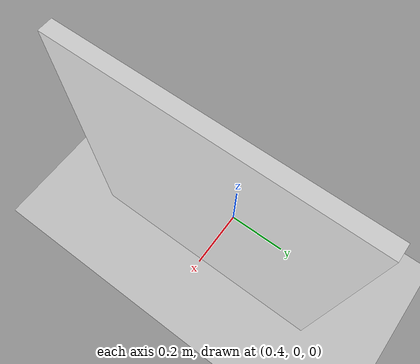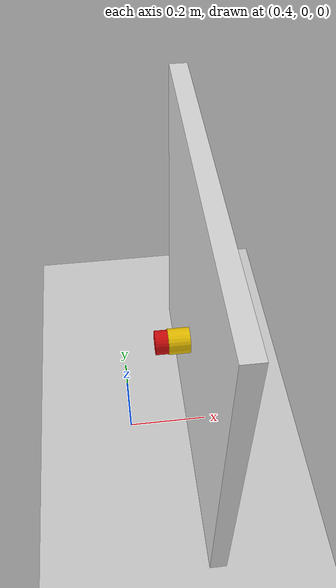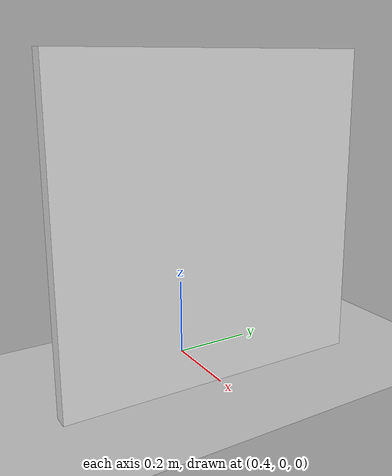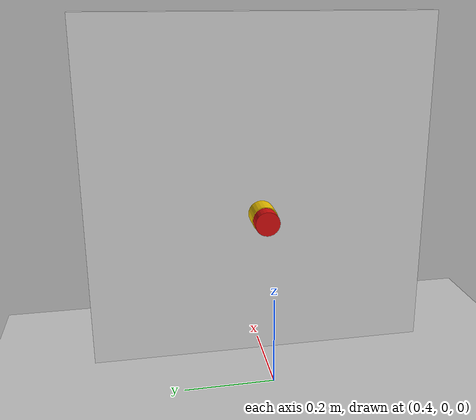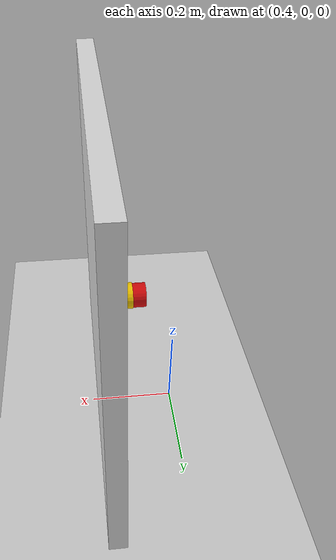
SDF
<?xml version="1.0" ?>
<sdf version="1.6">
  <world name="piper_x_estop_world">

    <physics name="default_physics" type="ode">
      <max_step_size>0.001</max_step_size>
      <real_time_factor>1</real_time_factor>
      <real_time_update_rate>1000</real_time_update_rate>
      <ode>
        <solver>
          <type>quick</type>
          <iters>150</iters>
          <sor>1.4</sor>
        </solver>
      </ode>
    </physics>

    <light name="sun" type="directional">
      <cast_shadows>true</cast_shadows>
      <pose>0 0 10 0 0 0</pose>
      <diffuse>0.8 0.8 0.8 1</diffuse>
      <specular>0.2 0.2 0.2 1</specular>
      <attenuation>
        <range>1000</range>
        <constant>0.9</constant>
        <linear>0.01</linear>
        <quadratic>0.001</quadratic>
      </attenuation>
      <direction>-0.5 0.1 -0.9</direction>
    </light>

    <!-- Ground plane -->
    <model name="ground_plane">
      <static>true</static>
      <link name="link">
        <collision name="collision">
          <geometry>
            <plane>
              <normal>0 0 1</normal>
              <size>100 100</size>
            </plane>
          </geometry>
          <surface>
            <friction>
              <ode><mu>100</mu><mu2>50</mu2></ode>
            </friction>
          </surface>
        </collision>
        <visual name="visual">
          <geometry>
            <plane>
              <normal>0 0 1</normal>
              <size>100 100</size>
            </plane>
          </geometry>
          <material>
            <script>
              <uri>file://media/materials/scripts/gazebo.material</uri>
              <name>Gazebo/Grey</name>
            </script>
          </material>
        </visual>
      </link>
    </model>

    <!--
      Vertical wall panel on which the e-stop is mounted.
      Box 0.04 m thick (X) × 0.80 m wide (Y) × 0.80 m tall (Z).
      Center at x=0.57, so the face toward the robot is at x=0.55 m.
    -->
    <model name="estop_wall">
      <static>true</static>
      <pose>0.57 0.0 0.40 0 0 0</pose>
      <link name="wall_link">
        <visual name="visual">
          <geometry>
            <box><size>0.04 0.80 0.80</size></box>
          </geometry>
          <material>
            <ambient>0.85 0.85 0.85 1</ambient>
            <diffuse>0.85 0.85 0.85 1</diffuse>
            <specular>0.1 0.1 0.1 1</specular>
          </material>
        </visual>
        <collision name="collision">
          <geometry>
            <box><size>0.04 0.80 0.80</size></box>
          </geometry>
        </collision>
      </link>
    </model>

    <model name="emergency_stop_button">
      <pose>0.55 0.0 0.35 0 -1.5708 0</pose>

      <!-- Yellow cylindrical housing -->
      <link name="button_housing">
        <!-- center = l/2 = 0.05/2 = 0.025 m from model frame -->
        <pose>0 0 0.025 0 0 0</pose>
        <inertial>
          <mass>2.0</mass>
          <!-- cylinder r=0.03 m, l=0.05 m: Ixx=Iyy=m/12*(3r²+l²), Izz=m*r²/2 -->
          <inertia>
            <ixx>0.000867</ixx><ixy>0</ixy><ixz>0</ixz>
            <iyy>0.000867</iyy><iyz>0</iyz>
            <izz>0.000900</izz>
          </inertia>
        </inertial>
        <visual name="housing_visual">
          <geometry>
            <cylinder><radius>0.03</radius><length>0.05</length></cylinder>
          </geometry>
          <material>
            <ambient>0.95 0.78 0.0 1</ambient>
            <diffuse>0.95 0.78 0.0 1</diffuse>
            <specular>0.2 0.2 0.1 1</specular>
          </material>
        </visual>
        <collision name="housing_collision">
          <geometry>
            <cylinder><radius>0.03</radius><length>0.05</length></cylinder>
          </geometry>
          <surface>
            <friction>
              <ode><mu>100</mu><mu2>100</mu2></ode>
            </friction>
            <contact>
              <ode><kp>1e6</kp><kd>100</kd></ode>
            </contact>
          </surface>
        </collision>
      </link>

      <!-- Red pressable mushroom cap -->
      <link name="button_cap">
        <!-- At rest: housing_front(0.05) + cap_half(0.015) = 0.065 → world x = 0.55 - 0.065 = 0.485 m -->
        <pose>0 0 0.065 0 0 0</pose>
        <inertial>
          <mass>0.08</mass>
          <!-- cylinder r=0.028 m, l=0.030 m: Ixx=Iyy=m/12*(3r²+l²), Izz=m*r²/2 -->
          <inertia>
            <ixx>0.0000217</ixx><ixy>0</ixy><ixz>0</ixz>
            <iyy>0.0000217</iyy><iyz>0</iyz>
            <izz>0.0000314</izz>
          </inertia>
        </inertial>
        <visual name="cap_visual">
          <geometry>
            <cylinder><radius>0.028</radius><length>0.030</length></cylinder>
          </geometry>
          <material>
            <ambient>0.85 0.05 0.05 1</ambient>
            <diffuse>0.85 0.05 0.05 1</diffuse>
            <specular>0.4 0.2 0.2 1</specular>
          </material>
        </visual>
        <collision name="cap_collision">
          <geometry>
            <cylinder><radius>0.028</radius><length>0.030</length></cylinder>
          </geometry>
          <surface>
            <friction>
              <ode><mu>0.8</mu><mu2>0.8</mu2></ode>
            </friction>
            <contact>
              <ode><kp>1e5</kp><kd>50</kd></ode>
            </contact>
          </surface>
        </collision>
      </link>

      <!--
        Fixed joint: anchors housing to world so it cannot drift.
        Required because the model is non-static (needed for the prismatic joint physics).
      -->
      <joint name="housing_world_fix" type="fixed">
        <parent>world</parent>
        <child>button_housing</child>
      </joint>

      <joint name="button_press_joint" type="prismatic">
        <parent>button_housing</parent>
        <child>button_cap</child>
        <axis>
          <xyz>0 0 1</xyz>
          <limit>
            <lower>-0.025</lower>
            <upper>0.0</upper>
            <effort>50</effort>
            <velocity>0.5</velocity>
          </limit>
          <dynamics>
            <spring_reference>0.0</spring_reference>
            <spring_stiffness>500.0</spring_stiffness>
            <damping>10.0</damping>
          </dynamics>
        </axis>
        <physics>
          <ode>
            <implicit_spring_damper>true</implicit_spring_damper>
          </ode>
        </physics>
      </joint>

    </model>

  </world>
</sdf>
